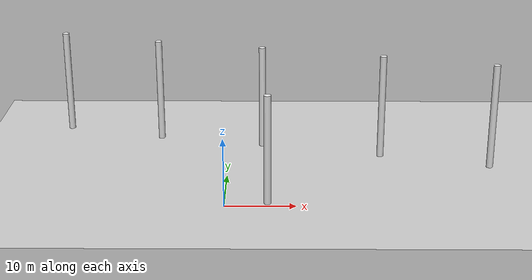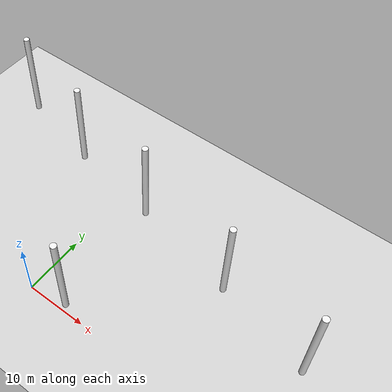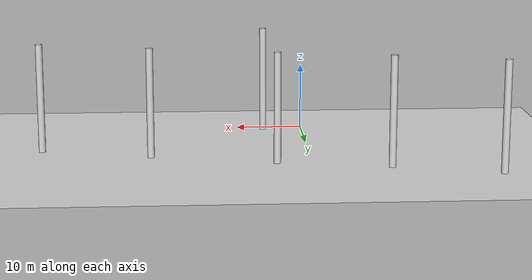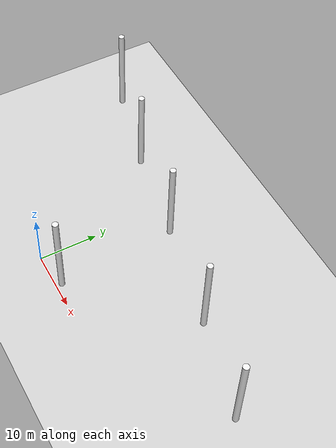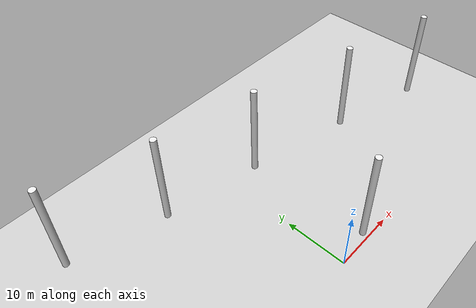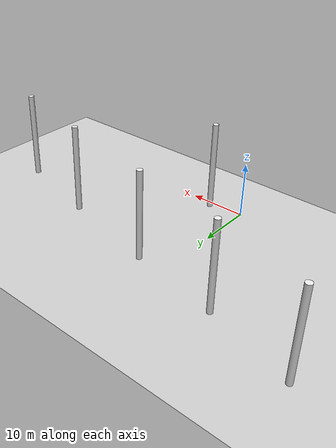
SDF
<sdf version="1.6">
  <world name="default">
    <include>
      <uri>model://sun</uri>
    </include>

     <model name="ground_plane">
      <static>true</static>
      <link name="link">
        <collision name="collision">
          <geometry>
            <plane>
              <normal>0 0 1</normal>
              <size>5000 5000</size>
            </plane>
          </geometry>
          <surface>
            <friction>
              <ode>
                <mu>100</mu>
                <mu2>50</mu2>
              </ode>
            </friction>
          </surface>
        </collision>

        <visual name="ground">
        <pose>0 0 -0.1 0 0 -1.57</pose>
        <cast_shadows>false</cast_shadows>
        <geometry>
          <plane>
            <normal>0 0 1</normal>
            <size>80 80</size>
          </plane>
        </geometry>
        <material>
          <script>
            <uri>file:///home/ubuntu/ardupilot_gazebo/materials/scripts</uri>
            <uri>file:///home/ubuntu/ardupilot_gazebo/materials/textures</uri>
            <name>Burlington</name>
          </script>
        </material>
      </visual>
      </link>
    </model>

    <include>
      <name>pole_0</name>
      <uri>model://simple_pole</uri>
      <pose frame=''>-26 28.5 0 0 0 0</pose>
    </include>

    <include>
      <name>pole_1</name>
      <uri>model://simple_pole</uri>
      <pose frame=''>-11 24.5 0 0 0 0</pose>
    </include>

    <include>
      <name>pole_2</name>
      <uri>model://simple_pole</uri>
      <pose frame=''>5 21.5 0 0 0 0</pose>
    </include>

    <include>
      <name>pole_3</name>
      <uri>model://simple_pole</uri>
      <pose frame=''>23 17.5 0 0 0 0</pose>
    </include>

    <include>
      <name>pole_4</name>
      <uri>model://simple_pole</uri>
      <pose frame=''>39 13.5 0 0 0 0</pose>
    </include>

    <include>
      <name>pole</name>
      <uri>model://simple_pole</uri>
      <pose frame=''>6 1 0 0 0 0</pose>
    </include>

  </world>
</sdf>

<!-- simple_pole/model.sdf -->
<sdf version='1.6'>
  <model name='simple_pole'>
    <link name='link_0'>
      <inertial>
        <mass>11.7467</mass>
        <inertia>
          <ixx>135.806</ixx>
          <ixy>0</ixy>
          <ixz>0</ixz>
          <iyy>135.806</iyy>
          <iyz>0</iyz>
          <izz>1.46833</izz>
        </inertia>
        <pose frame=''>0 0 0 0 -0 0</pose>
      </inertial>
      <pose frame=''>0 0 0 0 -0 0</pose>
      <gravity>1</gravity>
      <self_collide>0</self_collide>
      <kinematic>0</kinematic>
      <enable_wind>0</enable_wind>
      <visual name='visual'>
        <pose frame=''>0 0 8 0 -0 0</pose>
        <geometry>
          <cylinder>
            <radius>0.5</radius>
            <length>16</length>
          </cylinder>
        </geometry>
        <material>
          <lighting>1</lighting>
          <script>
            <uri>file://media/materials/scripts/gazebo.material</uri>
            <name>Gazebo/White</name>
          </script>
          <shader type='pixel'>
            <normal_map>__default__</normal_map>
          </shader>
          <ambient>0.3 0.3 0.3 1</ambient>
          <diffuse>0.7 0.7 0.7 1</diffuse>
          <specular>0.01 0.01 0.01 1</specular>
          <emissive>0 0 0 1</emissive>
        </material>
        <transparency>0</transparency>
        <cast_shadows>1</cast_shadows>
      </visual>
      <collision name='collision'>
        <laser_retro>0</laser_retro>
        <max_contacts>10</max_contacts>
        <pose frame=''>0 0 8 0 -0 0</pose>
        <geometry>
          <cylinder>
            <radius>0.5</radius>
            <length>16</length>
          </cylinder>
        </geometry>
        <surface>
          <friction>
            <ode>
              <mu>1</mu>
              <mu2>1</mu2>
              <fdir1>0 0 0</fdir1>
              <slip1>0</slip1>
              <slip2>0</slip2>
            </ode>
            <torsional>
              <coefficient>1</coefficient>
              <patch_radius>0</patch_radius>
              <surface_radius>0</surface_radius>
              <use_patch_radius>1</use_patch_radius>
              <ode>
                <slip>0</slip>
              </ode>
            </torsional>
          </friction>
          <bounce>
            <restitution_coefficient>0</restitution_coefficient>
            <threshold>1e+06</threshold>
          </bounce>
          <contact>
            <collide_without_contact>0</collide_without_contact>
            <collide_without_contact_bitmask>1</collide_without_contact_bitmask>
            <collide_bitmask>1</collide_bitmask>
            <ode>
              <soft_cfm>0</soft_cfm>
              <soft_erp>0.2</soft_erp>
              <kp>1e+13</kp>
              <kd>1</kd>
              <max_vel>0.01</max_vel>
              <min_depth>0</min_depth>
            </ode>
            <bullet>
              <split_impulse>1</split_impulse>
              <split_impulse_penetration_threshold>-0.01</split_impulse_penetration_threshold>
              <soft_cfm>0</soft_cfm>
              <soft_erp>0.2</soft_erp>
              <kp>1e+13</kp>
              <kd>1</kd>
            </bullet>
          </contact>
        </surface>
      </collision>
    </link>
    <static>0</static>
    <allow_auto_disable>1</allow_auto_disable>
  </model>
</sdf>
